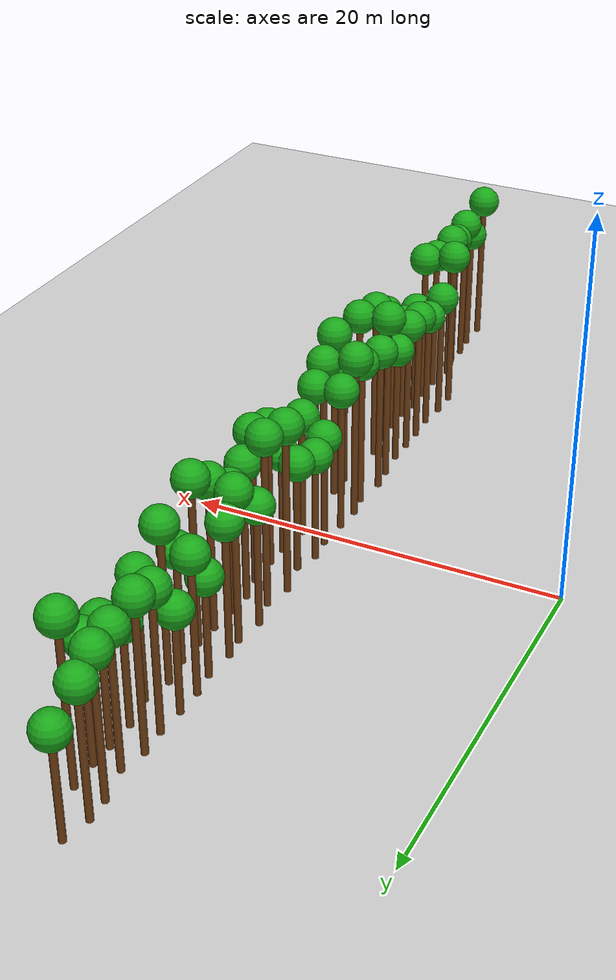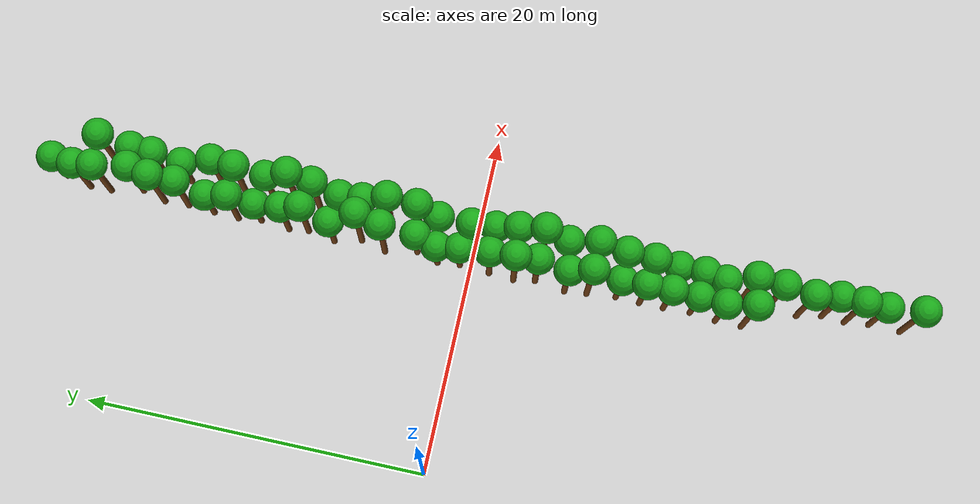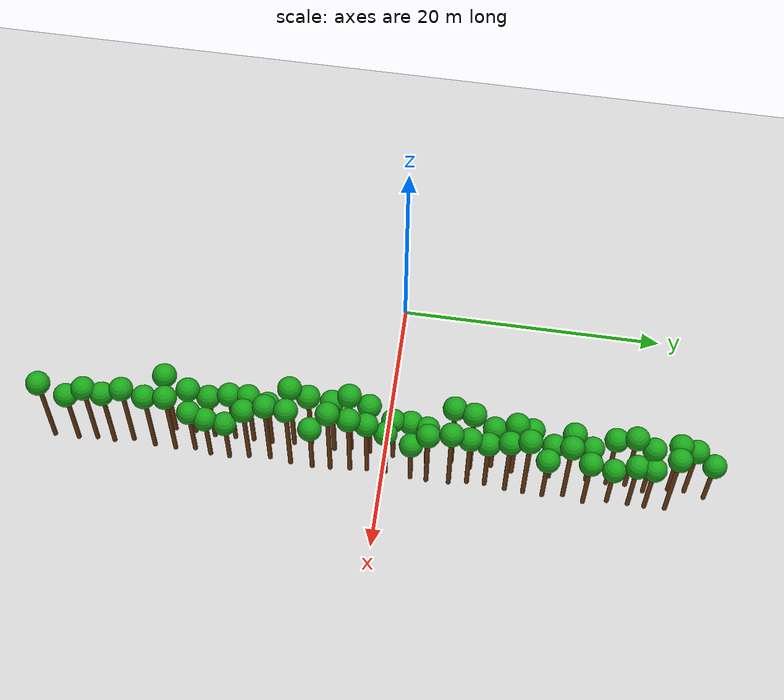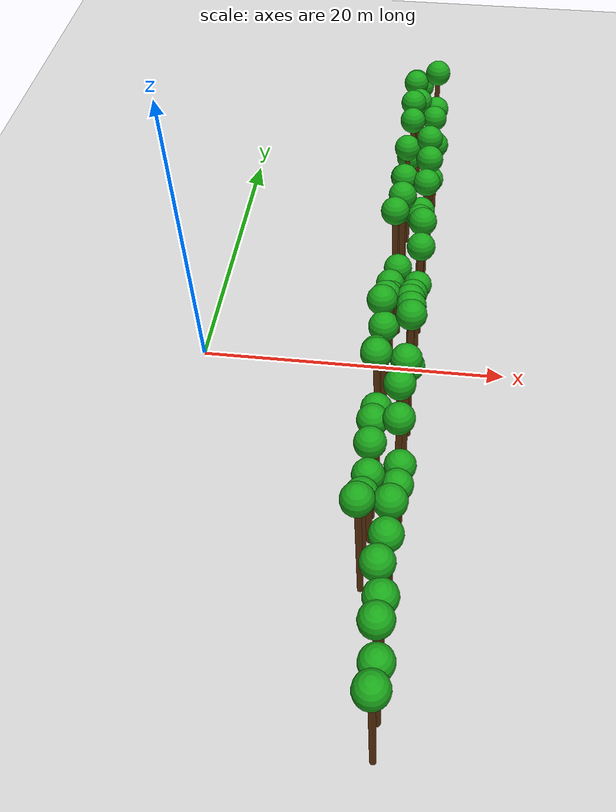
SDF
<sdf version="1.6">
 <world name="forest_world">
  <include><uri>model://sun</uri></include>
  <include><uri>model://ground_plane</uri></include>
  <model name="tree_843">
   <static>true</static>
   <link name="trunk">
    <collision name="collision">
     <pose>12.47 -16.13 4.30 0 0 0</pose>
     <geometry><cylinder><radius>0.18</radius><length>8.60</length></cylinder></geometry>
    </collision>
    <visual name="trunk_visual">
     <pose>12.47 -16.13 4.30 0 0 0</pose>
     <geometry><cylinder><radius>0.18</radius><length>8.60</length></cylinder></geometry>
     <material><ambient>0.35 0.20 0.05 1</ambient><diffuse>0.45 0.25 0.08 1</diffuse></material>
    </visual>
    <visual name="leaf_visual">
     <pose>12.47 -16.13 9.05 0 0 0</pose>
     <geometry><sphere><radius>0.9</radius></sphere></geometry>
     <material><ambient>0.05 0.45 0.05 1</ambient><diffuse>0.10 0.65 0.10 1</diffuse></material>
    </visual>
   </link>
  </model>
  <model name="tree_844">
   <static>true</static>
   <link name="trunk">
    <collision name="collision">
     <pose>12.47 -14.58 3.36 0 0 0</pose>
     <geometry><cylinder><radius>0.18</radius><length>6.72</length></cylinder></geometry>
    </collision>
    <visual name="trunk_visual">
     <pose>12.47 -14.58 3.36 0 0 0</pose>
     <geometry><cylinder><radius>0.18</radius><length>6.72</length></cylinder></geometry>
     <material><ambient>0.35 0.20 0.05 1</ambient><diffuse>0.45 0.25 0.08 1</diffuse></material>
    </visual>
    <visual name="leaf_visual">
     <pose>12.47 -14.58 7.17 0 0 0</pose>
     <geometry><sphere><radius>0.9</radius></sphere></geometry>
     <material><ambient>0.05 0.45 0.05 1</ambient><diffuse>0.10 0.65 0.10 1</diffuse></material>
    </visual>
   </link>
  </model>
  <model name="tree_845">
   <static>true</static>
   <link name="trunk">
    <collision name="collision">
     <pose>12.62 -13.05 3.12 0 0 0</pose>
     <geometry><cylinder><radius>0.18</radius><length>6.23</length></cylinder></geometry>
    </collision>
    <visual name="trunk_visual">
     <pose>12.62 -13.05 3.12 0 0 0</pose>
     <geometry><cylinder><radius>0.18</radius><length>6.23</length></cylinder></geometry>
     <material><ambient>0.35 0.20 0.05 1</ambient><diffuse>0.45 0.25 0.08 1</diffuse></material>
    </visual>
    <visual name="leaf_visual">
     <pose>12.62 -13.05 6.68 0 0 0</pose>
     <geometry><sphere><radius>0.9</radius></sphere></geometry>
     <material><ambient>0.05 0.45 0.05 1</ambient><diffuse>0.10 0.65 0.10 1</diffuse></material>
    </visual>
   </link>
  </model>
  <model name="tree_846">
   <static>true</static>
   <link name="trunk">
    <collision name="collision">
     <pose>12.55 -11.47 3.44 0 0 0</pose>
     <geometry><cylinder><radius>0.18</radius><length>6.89</length></cylinder></geometry>
    </collision>
    <visual name="trunk_visual">
     <pose>12.55 -11.47 3.44 0 0 0</pose>
     <geometry><cylinder><radius>0.18</radius><length>6.89</length></cylinder></geometry>
     <material><ambient>0.35 0.20 0.05 1</ambient><diffuse>0.45 0.25 0.08 1</diffuse></material>
    </visual>
    <visual name="leaf_visual">
     <pose>12.55 -11.47 7.34 0 0 0</pose>
     <geometry><sphere><radius>0.9</radius></sphere></geometry>
     <material><ambient>0.05 0.45 0.05 1</ambient><diffuse>0.10 0.65 0.10 1</diffuse></material>
    </visual>
   </link>
  </model>
  <model name="tree_847">
   <static>true</static>
   <link name="trunk">
    <collision name="collision">
     <pose>12.54 -10.05 3.51 0 0 0</pose>
     <geometry><cylinder><radius>0.18</radius><length>7.02</length></cylinder></geometry>
    </collision>
    <visual name="trunk_visual">
     <pose>12.54 -10.05 3.51 0 0 0</pose>
     <geometry><cylinder><radius>0.18</radius><length>7.02</length></cylinder></geometry>
     <material><ambient>0.35 0.20 0.05 1</ambient><diffuse>0.45 0.25 0.08 1</diffuse></material>
    </visual>
    <visual name="leaf_visual">
     <pose>12.54 -10.05 7.47 0 0 0</pose>
     <geometry><sphere><radius>0.9</radius></sphere></geometry>
     <material><ambient>0.05 0.45 0.05 1</ambient><diffuse>0.10 0.65 0.10 1</diffuse></material>
    </visual>
   </link>
  </model>
  <model name="tree_848">
   <static>true</static>
   <link name="trunk">
    <collision name="collision">
     <pose>12.58 -8.64 3.12 0 0 0</pose>
     <geometry><cylinder><radius>0.18</radius><length>6.23</length></cylinder></geometry>
    </collision>
    <visual name="trunk_visual">
     <pose>12.58 -8.64 3.12 0 0 0</pose>
     <geometry><cylinder><radius>0.18</radius><length>6.23</length></cylinder></geometry>
     <material><ambient>0.35 0.20 0.05 1</ambient><diffuse>0.45 0.25 0.08 1</diffuse></material>
    </visual>
    <visual name="leaf_visual">
     <pose>12.58 -8.64 6.68 0 0 0</pose>
     <geometry><sphere><radius>0.9</radius></sphere></geometry>
     <material><ambient>0.05 0.45 0.05 1</ambient><diffuse>0.10 0.65 0.10 1</diffuse></material>
    </visual>
   </link>
  </model>
  <model name="tree_849">
   <static>true</static>
   <link name="trunk">
    <collision name="collision">
     <pose>12.41 -6.93 4.45 0 0 0</pose>
     <geometry><cylinder><radius>0.18</radius><length>8.91</length></cylinder></geometry>
    </collision>
    <visual name="trunk_visual">
     <pose>12.41 -6.93 4.45 0 0 0</pose>
     <geometry><cylinder><radius>0.18</radius><length>8.91</length></cylinder></geometry>
     <material><ambient>0.35 0.20 0.05 1</ambient><diffuse>0.45 0.25 0.08 1</diffuse></material>
    </visual>
    <visual name="leaf_visual">
     <pose>12.41 -6.93 9.36 0 0 0</pose>
     <geometry><sphere><radius>0.9</radius></sphere></geometry>
     <material><ambient>0.05 0.45 0.05 1</ambient><diffuse>0.10 0.65 0.10 1</diffuse></material>
    </visual>
   </link>
  </model>
  <model name="tree_850">
   <static>true</static>
   <link name="trunk">
    <collision name="collision">
     <pose>12.26 -5.63 3.80 0 0 0</pose>
     <geometry><cylinder><radius>0.18</radius><length>7.61</length></cylinder></geometry>
    </collision>
    <visual name="trunk_visual">
     <pose>12.26 -5.63 3.80 0 0 0</pose>
     <geometry><cylinder><radius>0.18</radius><length>7.61</length></cylinder></geometry>
     <material><ambient>0.35 0.20 0.05 1</ambient><diffuse>0.45 0.25 0.08 1</diffuse></material>
    </visual>
    <visual name="leaf_visual">
     <pose>12.26 -5.63 8.06 0 0 0</pose>
     <geometry><sphere><radius>0.9</radius></sphere></geometry>
     <material><ambient>0.05 0.45 0.05 1</ambient><diffuse>0.10 0.65 0.10 1</diffuse></material>
    </visual>
   </link>
  </model>
  <model name="tree_851">
   <static>true</static>
   <link name="trunk">
    <collision name="collision">
     <pose>12.49 -3.83 3.88 0 0 0</pose>
     <geometry><cylinder><radius>0.18</radius><length>7.75</length></cylinder></geometry>
    </collision>
    <visual name="trunk_visual">
     <pose>12.49 -3.83 3.88 0 0 0</pose>
     <geometry><cylinder><radius>0.18</radius><length>7.75</length></cylinder></geometry>
     <material><ambient>0.35 0.20 0.05 1</ambient><diffuse>0.45 0.25 0.08 1</diffuse></material>
    </visual>
    <visual name="leaf_visual">
     <pose>12.49 -3.83 8.20 0 0 0</pose>
     <geometry><sphere><radius>0.9</radius></sphere></geometry>
     <material><ambient>0.05 0.45 0.05 1</ambient><diffuse>0.10 0.65 0.10 1</diffuse></material>
    </visual>
   </link>
  </model>
  <model name="tree_852">
   <static>true</static>
   <link name="trunk">
    <collision name="collision">
     <pose>12.27 -2.58 4.32 0 0 0</pose>
     <geometry><cylinder><radius>0.18</radius><length>8.64</length></cylinder></geometry>
    </collision>
    <visual name="trunk_visual">
     <pose>12.27 -2.58 4.32 0 0 0</pose>
     <geometry><cylinder><radius>0.18</radius><length>8.64</length></cylinder></geometry>
     <material><ambient>0.35 0.20 0.05 1</ambient><diffuse>0.45 0.25 0.08 1</diffuse></material>
    </visual>
    <visual name="leaf_visual">
     <pose>12.27 -2.58 9.09 0 0 0</pose>
     <geometry><sphere><radius>0.9</radius></sphere></geometry>
     <material><ambient>0.05 0.45 0.05 1</ambient><diffuse>0.10 0.65 0.10 1</diffuse></material>
    </visual>
   </link>
  </model>
  <model name="tree_853">
   <static>true</static>
   <link name="trunk">
    <collision name="collision">
     <pose>12.35 -1.11 3.78 0 0 0</pose>
     <geometry><cylinder><radius>0.18</radius><length>7.55</length></cylinder></geometry>
    </collision>
    <visual name="trunk_visual">
     <pose>12.35 -1.11 3.78 0 0 0</pose>
     <geometry><cylinder><radius>0.18</radius><length>7.55</length></cylinder></geometry>
     <material><ambient>0.35 0.20 0.05 1</ambient><diffuse>0.45 0.25 0.08 1</diffuse></material>
    </visual>
    <visual name="leaf_visual">
     <pose>12.35 -1.11 8.00 0 0 0</pose>
     <geometry><sphere><radius>0.9</radius></sphere></geometry>
     <material><ambient>0.05 0.45 0.05 1</ambient><diffuse>0.10 0.65 0.10 1</diffuse></material>
    </visual>
   </link>
  </model>
  <model name="tree_854">
   <static>true</static>
   <link name="trunk">
    <collision name="collision">
     <pose>12.45 0.66 2.90 0 0 0</pose>
     <geometry><cylinder><radius>0.18</radius><length>5.79</length></cylinder></geometry>
    </collision>
    <visual name="trunk_visual">
     <pose>12.45 0.66 2.90 0 0 0</pose>
     <geometry><cylinder><radius>0.18</radius><length>5.79</length></cylinder></geometry>
     <material><ambient>0.35 0.20 0.05 1</ambient><diffuse>0.45 0.25 0.08 1</diffuse></material>
    </visual>
    <visual name="leaf_visual">
     <pose>12.45 0.66 6.24 0 0 0</pose>
     <geometry><sphere><radius>0.9</radius></sphere></geometry>
     <material><ambient>0.05 0.45 0.05 1</ambient><diffuse>0.10 0.65 0.10 1</diffuse></material>
    </visual>
   </link>
  </model>
  <model name="tree_855">
   <static>true</static>
   <link name="trunk">
    <collision name="collision">
     <pose>12.30 1.97 2.75 0 0 0</pose>
     <geometry><cylinder><radius>0.18</radius><length>5.50</length></cylinder></geometry>
    </collision>
    <visual name="trunk_visual">
     <pose>12.30 1.97 2.75 0 0 0</pose>
     <geometry><cylinder><radius>0.18</radius><length>5.50</length></cylinder></geometry>
     <material><ambient>0.35 0.20 0.05 1</ambient><diffuse>0.45 0.25 0.08 1</diffuse></material>
    </visual>
    <visual name="leaf_visual">
     <pose>12.30 1.97 5.95 0 0 0</pose>
     <geometry><sphere><radius>0.9</radius></sphere></geometry>
     <material><ambient>0.05 0.45 0.05 1</ambient><diffuse>0.10 0.65 0.10 1</diffuse></material>
    </visual>
   </link>
  </model>
  <model name="tree_856">
   <static>true</static>
   <link name="trunk">
    <collision name="collision">
     <pose>12.67 3.25 2.83 0 0 0</pose>
     <geometry><cylinder><radius>0.18</radius><length>5.66</length></cylinder></geometry>
    </collision>
    <visual name="trunk_visual">
     <pose>12.67 3.25 2.83 0 0 0</pose>
     <geometry><cylinder><radius>0.18</radius><length>5.66</length></cylinder></geometry>
     <material><ambient>0.35 0.20 0.05 1</ambient><diffuse>0.45 0.25 0.08 1</diffuse></material>
    </visual>
    <visual name="leaf_visual">
     <pose>12.67 3.25 6.11 0 0 0</pose>
     <geometry><sphere><radius>0.9</radius></sphere></geometry>
     <material><ambient>0.05 0.45 0.05 1</ambient><diffuse>0.10 0.65 0.10 1</diffuse></material>
    </visual>
   </link>
  </model>
  <model name="tree_857">
   <static>true</static>
   <link name="trunk">
    <collision name="collision">
     <pose>12.29 5.11 4.39 0 0 0</pose>
     <geometry><cylinder><radius>0.18</radius><length>8.79</length></cylinder></geometry>
    </collision>
    <visual name="trunk_visual">
     <pose>12.29 5.11 4.39 0 0 0</pose>
     <geometry><cylinder><radius>0.18</radius><length>8.79</length></cylinder></geometry>
     <material><ambient>0.35 0.20 0.05 1</ambient><diffuse>0.45 0.25 0.08 1</diffuse></material>
    </visual>
    <visual name="leaf_visual">
     <pose>12.29 5.11 9.24 0 0 0</pose>
     <geometry><sphere><radius>0.9</radius></sphere></geometry>
     <material><ambient>0.05 0.45 0.05 1</ambient><diffuse>0.10 0.65 0.10 1</diffuse></material>
    </visual>
   </link>
  </model>
  <model name="tree_858">
   <static>true</static>
   <link name="trunk">
    <collision name="collision">
     <pose>12.63 6.57 4.44 0 0 0</pose>
     <geometry><cylinder><radius>0.18</radius><length>8.88</length></cylinder></geometry>
    </collision>
    <visual name="trunk_visual">
     <pose>12.63 6.57 4.44 0 0 0</pose>
     <geometry><cylinder><radius>0.18</radius><length>8.88</length></cylinder></geometry>
     <material><ambient>0.35 0.20 0.05 1</ambient><diffuse>0.45 0.25 0.08 1</diffuse></material>
    </visual>
    <visual name="leaf_visual">
     <pose>12.63 6.57 9.33 0 0 0</pose>
     <geometry><sphere><radius>0.9</radius></sphere></geometry>
     <material><ambient>0.05 0.45 0.05 1</ambient><diffuse>0.10 0.65 0.10 1</diffuse></material>
    </visual>
   </link>
  </model>
  <model name="tree_859">
   <static>true</static>
   <link name="trunk">
    <collision name="collision">
     <pose>12.25 8.14 3.11 0 0 0</pose>
     <geometry><cylinder><radius>0.18</radius><length>6.21</length></cylinder></geometry>
    </collision>
    <visual name="trunk_visual">
     <pose>12.25 8.14 3.11 0 0 0</pose>
     <geometry><cylinder><radius>0.18</radius><length>6.21</length></cylinder></geometry>
     <material><ambient>0.35 0.20 0.05 1</ambient><diffuse>0.45 0.25 0.08 1</diffuse></material>
    </visual>
    <visual name="leaf_visual">
     <pose>12.25 8.14 6.66 0 0 0</pose>
     <geometry><sphere><radius>0.9</radius></sphere></geometry>
     <material><ambient>0.05 0.45 0.05 1</ambient><diffuse>0.10 0.65 0.10 1</diffuse></material>
    </visual>
   </link>
  </model>
  <model name="tree_860">
   <static>true</static>
   <link name="trunk">
    <collision name="collision">
     <pose>12.50 9.74 3.91 0 0 0</pose>
     <geometry><cylinder><radius>0.18</radius><length>7.82</length></cylinder></geometry>
    </collision>
    <visual name="trunk_visual">
     <pose>12.50 9.74 3.91 0 0 0</pose>
     <geometry><cylinder><radius>0.18</radius><length>7.82</length></cylinder></geometry>
     <material><ambient>0.35 0.20 0.05 1</ambient><diffuse>0.45 0.25 0.08 1</diffuse></material>
    </visual>
    <visual name="leaf_visual">
     <pose>12.50 9.74 8.27 0 0 0</pose>
     <geometry><sphere><radius>0.9</radius></sphere></geometry>
     <material><ambient>0.05 0.45 0.05 1</ambient><diffuse>0.10 0.65 0.10 1</diffuse></material>
    </visual>
   </link>
  </model>
  <model name="tree_861">
   <static>true</static>
   <link name="trunk">
    <collision name="collision">
     <pose>12.36 10.89 3.46 0 0 0</pose>
     <geometry><cylinder><radius>0.18</radius><length>6.93</length></cylinder></geometry>
    </collision>
    <visual name="trunk_visual">
     <pose>12.36 10.89 3.46 0 0 0</pose>
     <geometry><cylinder><radius>0.18</radius><length>6.93</length></cylinder></geometry>
     <material><ambient>0.35 0.20 0.05 1</ambient><diffuse>0.45 0.25 0.08 1</diffuse></material>
    </visual>
    <visual name="leaf_visual">
     <pose>12.36 10.89 7.38 0 0 0</pose>
     <geometry><sphere><radius>0.9</radius></sphere></geometry>
     <material><ambient>0.05 0.45 0.05 1</ambient><diffuse>0.10 0.65 0.10 1</diffuse></material>
    </visual>
   </link>
  </model>
  <model name="tree_862">
   <static>true</static>
   <link name="trunk">
    <collision name="collision">
     <pose>12.50 12.59 2.52 0 0 0</pose>
     <geometry><cylinder><radius>0.18</radius><length>5.05</length></cylinder></geometry>
    </collision>
    <visual name="trunk_visual">
     <pose>12.50 12.59 2.52 0 0 0</pose>
     <geometry><cylinder><radius>0.18</radius><length>5.05</length></cylinder></geometry>
     <material><ambient>0.35 0.20 0.05 1</ambient><diffuse>0.45 0.25 0.08 1</diffuse></material>
    </visual>
    <visual name="leaf_visual">
     <pose>12.50 12.59 5.50 0 0 0</pose>
     <geometry><sphere><radius>0.9</radius></sphere></geometry>
     <material><ambient>0.05 0.45 0.05 1</ambient><diffuse>0.10 0.65 0.10 1</diffuse></material>
    </visual>
   </link>
  </model>
  <model name="tree_863">
   <static>true</static>
   <link name="trunk">
    <collision name="collision">
     <pose>12.34 13.94 3.55 0 0 0</pose>
     <geometry><cylinder><radius>0.18</radius><length>7.09</length></cylinder></geometry>
    </collision>
    <visual name="trunk_visual">
     <pose>12.34 13.94 3.55 0 0 0</pose>
     <geometry><cylinder><radius>0.18</radius><length>7.09</length></cylinder></geometry>
     <material><ambient>0.35 0.20 0.05 1</ambient><diffuse>0.45 0.25 0.08 1</diffuse></material>
    </visual>
    <visual name="leaf_visual">
     <pose>12.34 13.94 7.54 0 0 0</pose>
     <geometry><sphere><radius>0.9</radius></sphere></geometry>
     <material><ambient>0.05 0.45 0.05 1</ambient><diffuse>0.10 0.65 0.10 1</diffuse></material>
    </visual>
   </link>
  </model>
  <model name="tree_864">
   <static>true</static>
   <link name="trunk">
    <collision name="collision">
     <pose>12.37 15.40 2.59 0 0 0</pose>
     <geometry><cylinder><radius>0.18</radius><length>5.17</length></cylinder></geometry>
    </collision>
    <visual name="trunk_visual">
     <pose>12.37 15.40 2.59 0 0 0</pose>
     <geometry><cylinder><radius>0.18</radius><length>5.17</length></cylinder></geometry>
     <material><ambient>0.35 0.20 0.05 1</ambient><diffuse>0.45 0.25 0.08 1</diffuse></material>
    </visual>
    <visual name="leaf_visual">
     <pose>12.37 15.40 5.62 0 0 0</pose>
     <geometry><sphere><radius>0.9</radius></sphere></geometry>
     <material><ambient>0.05 0.45 0.05 1</ambient><diffuse>0.10 0.65 0.10 1</diffuse></material>
    </visual>
   </link>
  </model>
  <model name="tree_865">
   <static>true</static>
   <link name="trunk">
    <collision name="collision">
     <pose>12.46 16.95 3.65 0 0 0</pose>
     <geometry><cylinder><radius>0.18</radius><length>7.29</length></cylinder></geometry>
    </collision>
    <visual name="trunk_visual">
     <pose>12.46 16.95 3.65 0 0 0</pose>
     <geometry><cylinder><radius>0.18</radius><length>7.29</length></cylinder></geometry>
     <material><ambient>0.35 0.20 0.05 1</ambient><diffuse>0.45 0.25 0.08 1</diffuse></material>
    </visual>
    <visual name="leaf_visual">
     <pose>12.46 16.95 7.74 0 0 0</pose>
     <geometry><sphere><radius>0.9</radius></sphere></geometry>
     <material><ambient>0.05 0.45 0.05 1</ambient><diffuse>0.10 0.65 0.10 1</diffuse></material>
    </visual>
   </link>
  </model>
  <model name="tree_866">
   <static>true</static>
   <link name="trunk">
    <collision name="collision">
     <pose>12.39 18.38 3.91 0 0 0</pose>
     <geometry><cylinder><radius>0.18</radius><length>7.82</length></cylinder></geometry>
    </collision>
    <visual name="trunk_visual">
     <pose>12.39 18.38 3.91 0 0 0</pose>
     <geometry><cylinder><radius>0.18</radius><length>7.82</length></cylinder></geometry>
     <material><ambient>0.35 0.20 0.05 1</ambient><diffuse>0.45 0.25 0.08 1</diffuse></material>
    </visual>
    <visual name="leaf_visual">
     <pose>12.39 18.38 8.27 0 0 0</pose>
     <geometry><sphere><radius>0.9</radius></sphere></geometry>
     <material><ambient>0.05 0.45 0.05 1</ambient><diffuse>0.10 0.65 0.10 1</diffuse></material>
    </visual>
   </link>
  </model>
  <model name="tree_867">
   <static>true</static>
   <link name="trunk">
    <collision name="collision">
     <pose>12.74 19.75 3.53 0 0 0</pose>
     <geometry><cylinder><radius>0.18</radius><length>7.07</length></cylinder></geometry>
    </collision>
    <visual name="trunk_visual">
     <pose>12.74 19.75 3.53 0 0 0</pose>
     <geometry><cylinder><radius>0.18</radius><length>7.07</length></cylinder></geometry>
     <material><ambient>0.35 0.20 0.05 1</ambient><diffuse>0.45 0.25 0.08 1</diffuse></material>
    </visual>
    <visual name="leaf_visual">
     <pose>12.74 19.75 7.52 0 0 0</pose>
     <geometry><sphere><radius>0.9</radius></sphere></geometry>
     <material><ambient>0.05 0.45 0.05 1</ambient><diffuse>0.10 0.65 0.10 1</diffuse></material>
    </visual>
   </link>
  </model>
  <model name="tree_868">
   <static>true</static>
   <link name="trunk">
    <collision name="collision">
     <pose>12.34 21.62 3.69 0 0 0</pose>
     <geometry><cylinder><radius>0.18</radius><length>7.39</length></cylinder></geometry>
    </collision>
    <visual name="trunk_visual">
     <pose>12.34 21.62 3.69 0 0 0</pose>
     <geometry><cylinder><radius>0.18</radius><length>7.39</length></cylinder></geometry>
     <material><ambient>0.35 0.20 0.05 1</ambient><diffuse>0.45 0.25 0.08 1</diffuse></material>
    </visual>
    <visual name="leaf_visual">
     <pose>12.34 21.62 7.84 0 0 0</pose>
     <geometry><sphere><radius>0.9</radius></sphere></geometry>
     <material><ambient>0.05 0.45 0.05 1</ambient><diffuse>0.10 0.65 0.10 1</diffuse></material>
    </visual>
   </link>
  </model>
  <model name="tree_869">
   <static>true</static>
   <link name="trunk">
    <collision name="collision">
     <pose>12.30 22.85 3.35 0 0 0</pose>
     <geometry><cylinder><radius>0.18</radius><length>6.70</length></cylinder></geometry>
    </collision>
    <visual name="trunk_visual">
     <pose>12.30 22.85 3.35 0 0 0</pose>
     <geometry><cylinder><radius>0.18</radius><length>6.70</length></cylinder></geometry>
     <material><ambient>0.35 0.20 0.05 1</ambient><diffuse>0.45 0.25 0.08 1</diffuse></material>
    </visual>
    <visual name="leaf_visual">
     <pose>12.30 22.85 7.15 0 0 0</pose>
     <geometry><sphere><radius>0.9</radius></sphere></geometry>
     <material><ambient>0.05 0.45 0.05 1</ambient><diffuse>0.10 0.65 0.10 1</diffuse></material>
    </visual>
   </link>
  </model>
  <model name="tree_870">
   <static>true</static>
   <link name="trunk">
    <collision name="collision">
     <pose>12.64 24.33 2.67 0 0 0</pose>
     <geometry><cylinder><radius>0.18</radius><length>5.33</length></cylinder></geometry>
    </collision>
    <visual name="trunk_visual">
     <pose>12.64 24.33 2.67 0 0 0</pose>
     <geometry><cylinder><radius>0.18</radius><length>5.33</length></cylinder></geometry>
     <material><ambient>0.35 0.20 0.05 1</ambient><diffuse>0.45 0.25 0.08 1</diffuse></material>
    </visual>
    <visual name="leaf_visual">
     <pose>12.64 24.33 5.78 0 0 0</pose>
     <geometry><sphere><radius>0.9</radius></sphere></geometry>
     <material><ambient>0.05 0.45 0.05 1</ambient><diffuse>0.10 0.65 0.10 1</diffuse></material>
    </visual>
   </link>
  </model>
  <model name="tree_871">
   <static>true</static>
   <link name="trunk">
    <collision name="collision">
     <pose>14.18 -25.22 4.11 0 0 0</pose>
     <geometry><cylinder><radius>0.18</radius><length>8.23</length></cylinder></geometry>
    </collision>
    <visual name="trunk_visual">
     <pose>14.18 -25.22 4.11 0 0 0</pose>
     <geometry><cylinder><radius>0.18</radius><length>8.23</length></cylinder></geometry>
     <material><ambient>0.35 0.20 0.05 1</ambient><diffuse>0.45 0.25 0.08 1</diffuse></material>
    </visual>
    <visual name="leaf_visual">
     <pose>14.18 -25.22 8.68 0 0 0</pose>
     <geometry><sphere><radius>0.9</radius></sphere></geometry>
     <material><ambient>0.05 0.45 0.05 1</ambient><diffuse>0.10 0.65 0.10 1</diffuse></material>
    </visual>
   </link>
  </model>
  <model name="tree_872">
   <static>true</static>
   <link name="trunk">
    <collision name="collision">
     <pose>14.19 -23.37 3.39 0 0 0</pose>
     <geometry><cylinder><radius>0.18</radius><length>6.79</length></cylinder></geometry>
    </collision>
    <visual name="trunk_visual">
     <pose>14.19 -23.37 3.39 0 0 0</pose>
     <geometry><cylinder><radius>0.18</radius><length>6.79</length></cylinder></geometry>
     <material><ambient>0.35 0.20 0.05 1</ambient><diffuse>0.45 0.25 0.08 1</diffuse></material>
    </visual>
    <visual name="leaf_visual">
     <pose>14.19 -23.37 7.24 0 0 0</pose>
     <geometry><sphere><radius>0.9</radius></sphere></geometry>
     <material><ambient>0.05 0.45 0.05 1</ambient><diffuse>0.10 0.65 0.10 1</diffuse></material>
    </visual>
   </link>
  </model>
  <model name="tree_873">
   <static>true</static>
   <link name="trunk">
    <collision name="collision">
     <pose>14.03 -21.94 4.00 0 0 0</pose>
     <geometry><cylinder><radius>0.18</radius><length>8.00</length></cylinder></geometry>
    </collision>
    <visual name="trunk_visual">
     <pose>14.03 -21.94 4.00 0 0 0</pose>
     <geometry><cylinder><radius>0.18</radius><length>8.00</length></cylinder></geometry>
     <material><ambient>0.35 0.20 0.05 1</ambient><diffuse>0.45 0.25 0.08 1</diffuse></material>
    </visual>
    <visual name="leaf_visual">
     <pose>14.03 -21.94 8.45 0 0 0</pose>
     <geometry><sphere><radius>0.9</radius></sphere></geometry>
     <material><ambient>0.05 0.45 0.05 1</ambient><diffuse>0.10 0.65 0.10 1</diffuse></material>
    </visual>
   </link>
  </model>
  <model name="tree_874">
   <static>true</static>
   <link name="trunk">
    <collision name="collision">
     <pose>14.09 -20.59 3.81 0 0 0</pose>
     <geometry><cylinder><radius>0.18</radius><length>7.61</length></cylinder></geometry>
    </collision>
    <visual name="trunk_visual">
     <pose>14.09 -20.59 3.81 0 0 0</pose>
     <geometry><cylinder><radius>0.18</radius><length>7.61</length></cylinder></geometry>
     <material><ambient>0.35 0.20 0.05 1</ambient><diffuse>0.45 0.25 0.08 1</diffuse></material>
    </visual>
    <visual name="leaf_visual">
     <pose>14.09 -20.59 8.06 0 0 0</pose>
     <geometry><sphere><radius>0.9</radius></sphere></geometry>
     <material><ambient>0.05 0.45 0.05 1</ambient><diffuse>0.10 0.65 0.10 1</diffuse></material>
    </visual>
   </link>
  </model>
  <model name="tree_875">
   <static>true</static>
   <link name="trunk">
    <collision name="collision">
     <pose>13.78 -19.15 4.07 0 0 0</pose>
     <geometry><cylinder><radius>0.18</radius><length>8.15</length></cylinder></geometry>
    </collision>
    <visual name="trunk_visual">
     <pose>13.78 -19.15 4.07 0 0 0</pose>
     <geometry><cylinder><radius>0.18</radius><length>8.15</length></cylinder></geometry>
     <material><ambient>0.35 0.20 0.05 1</ambient><diffuse>0.45 0.25 0.08 1</diffuse></material>
    </visual>
    <visual name="leaf_visual">
     <pose>13.78 -19.15 8.60 0 0 0</pose>
     <geometry><sphere><radius>0.9</radius></sphere></geometry>
     <material><ambient>0.05 0.45 0.05 1</ambient><diffuse>0.10 0.65 0.10 1</diffuse></material>
    </visual>
   </link>
  </model>
  <model name="tree_876">
   <static>true</static>
   <link name="trunk">
    <collision name="collision">
     <pose>14.02 -17.46 3.92 0 0 0</pose>
     <geometry><cylinder><radius>0.18</radius><length>7.84</length></cylinder></geometry>
    </collision>
    <visual name="trunk_visual">
     <pose>14.02 -17.46 3.92 0 0 0</pose>
     <geometry><cylinder><radius>0.18</radius><length>7.84</length></cylinder></geometry>
     <material><ambient>0.35 0.20 0.05 1</ambient><diffuse>0.45 0.25 0.08 1</diffuse></material>
    </visual>
    <visual name="leaf_visual">
     <pose>14.02 -17.46 8.29 0 0 0</pose>
     <geometry><sphere><radius>0.9</radius></sphere></geometry>
     <material><ambient>0.05 0.45 0.05 1</ambient><diffuse>0.10 0.65 0.10 1</diffuse></material>
    </visual>
   </link>
  </model>
  <model name="tree_877">
   <static>true</static>
   <link name="trunk">
    <collision name="collision">
     <pose>14.06 -15.86 4.13 0 0 0</pose>
     <geometry><cylinder><radius>0.18</radius><length>8.27</length></cylinder></geometry>
    </collision>
    <visual name="trunk_visual">
     <pose>14.06 -15.86 4.13 0 0 0</pose>
     <geometry><cylinder><radius>0.18</radius><length>8.27</length></cylinder></geometry>
     <material><ambient>0.35 0.20 0.05 1</ambient><diffuse>0.45 0.25 0.08 1</diffuse></material>
    </visual>
    <visual name="leaf_visual">
     <pose>14.06 -15.86 8.72 0 0 0</pose>
     <geometry><sphere><radius>0.9</radius></sphere></geometry>
     <material><ambient>0.05 0.45 0.05 1</ambient><diffuse>0.10 0.65 0.10 1</diffuse></material>
    </visual>
   </link>
  </model>
  <model name="tree_878">
   <static>true</static>
   <link name="trunk">
    <collision name="collision">
     <pose>13.91 -14.36 2.92 0 0 0</pose>
     <geometry><cylinder><radius>0.18</radius><length>5.84</length></cylinder></geometry>
    </collision>
    <visual name="trunk_visual">
     <pose>13.91 -14.36 2.92 0 0 0</pose>
     <geometry><cylinder><radius>0.18</radius><length>5.84</length></cylinder></geometry>
     <material><ambient>0.35 0.20 0.05 1</ambient><diffuse>0.45 0.25 0.08 1</diffuse></material>
    </visual>
    <visual name="leaf_visual">
     <pose>13.91 -14.36 6.29 0 0 0</pose>
     <geometry><sphere><radius>0.9</radius></sphere></geometry>
     <material><ambient>0.05 0.45 0.05 1</ambient><diffuse>0.10 0.65 0.10 1</diffuse></material>
    </visual>
   </link>
  </model>
  <model name="tree_879">
   <static>true</static>
   <link name="trunk">
    <collision name="collision">
     <pose>14.16 -13.13 2.81 0 0 0</pose>
     <geometry><cylinder><radius>0.18</radius><length>5.61</length></cylinder></geometry>
    </collision>
    <visual name="trunk_visual">
     <pose>14.16 -13.13 2.81 0 0 0</pose>
     <geometry><cylinder><radius>0.18</radius><length>5.61</length></cylinder></geometry>
     <material><ambient>0.35 0.20 0.05 1</ambient><diffuse>0.45 0.25 0.08 1</diffuse></material>
    </visual>
    <visual name="leaf_visual">
     <pose>14.16 -13.13 6.06 0 0 0</pose>
     <geometry><sphere><radius>0.9</radius></sphere></geometry>
     <material><ambient>0.05 0.45 0.05 1</ambient><diffuse>0.10 0.65 0.10 1</diffuse></material>
    </visual>
   </link>
  </model>
  <model name="tree_880">
   <static>true</static>
   <link name="trunk">
    <collision name="collision">
     <pose>14.19 -11.66 2.65 0 0 0</pose>
     <geometry><cylinder><radius>0.18</radius><length>5.30</length></cylinder></geometry>
    </collision>
    <visual name="trunk_visual">
     <pose>14.19 -11.66 2.65 0 0 0</pose>
     <geometry><cylinder><radius>0.18</radius><length>5.30</length></cylinder></geometry>
     <material><ambient>0.35 0.20 0.05 1</ambient><diffuse>0.45 0.25 0.08 1</diffuse></material>
    </visual>
    <visual name="leaf_visual">
     <pose>14.19 -11.66 5.75 0 0 0</pose>
     <geometry><sphere><radius>0.9</radius></sphere></geometry>
     <material><ambient>0.05 0.45 0.05 1</ambient><diffuse>0.10 0.65 0.10 1</diffuse></material>
    </visual>
   </link>
  </model>
  <model name="tree_881">
   <static>true</static>
   <link name="trunk">
    <collision name="collision">
     <pose>13.97 -10.18 3.74 0 0 0</pose>
     <geometry><cylinder><radius>0.18</radius><length>7.49</length></cylinder></geometry>
    </collision>
    <visual name="trunk_visual">
     <pose>13.97 -10.18 3.74 0 0 0</pose>
     <geometry><cylinder><radius>0.18</radius><length>7.49</length></cylinder></geometry>
     <material><ambient>0.35 0.20 0.05 1</ambient><diffuse>0.45 0.25 0.08 1</diffuse></material>
    </visual>
    <visual name="leaf_visual">
     <pose>13.97 -10.18 7.94 0 0 0</pose>
     <geometry><sphere><radius>0.9</radius></sphere></geometry>
     <material><ambient>0.05 0.45 0.05 1</ambient><diffuse>0.10 0.65 0.10 1</diffuse></material>
    </visual>
   </link>
  </model>
  <model name="tree_882">
   <static>true</static>
   <link name="trunk">
    <collision name="collision">
     <pose>13.85 -8.57 4.22 0 0 0</pose>
     <geometry><cylinder><radius>0.18</radius><length>8.43</length></cylinder></geometry>
    </collision>
    <visual name="trunk_visual">
     <pose>13.85 -8.57 4.22 0 0 0</pose>
     <geometry><cylinder><radius>0.18</radius><length>8.43</length></cylinder></geometry>
     <material><ambient>0.35 0.20 0.05 1</ambient><diffuse>0.45 0.25 0.08 1</diffuse></material>
    </visual>
    <visual name="leaf_visual">
     <pose>13.85 -8.57 8.88 0 0 0</pose>
     <geometry><sphere><radius>0.9</radius></sphere></geometry>
     <material><ambient>0.05 0.45 0.05 1</ambient><diffuse>0.10 0.65 0.10 1</diffuse></material>
    </visual>
   </link>
  </model>
  <model name="tree_883">
   <static>true</static>
   <link name="trunk">
    <collision name="collision">
     <pose>14.06 -6.97 4.32 0 0 0</pose>
     <geometry><cylinder><radius>0.18</radius><length>8.63</length></cylinder></geometry>
    </collision>
    <visual name="trunk_visual">
     <pose>14.06 -6.97 4.32 0 0 0</pose>
     <geometry><cylinder><radius>0.18</radius><length>8.63</length></cylinder></geometry>
     <material><ambient>0.35 0.20 0.05 1</ambient><diffuse>0.45 0.25 0.08 1</diffuse></material>
    </visual>
    <visual name="leaf_visual">
     <pose>14.06 -6.97 9.08 0 0 0</pose>
     <geometry><sphere><radius>0.9</radius></sphere></geometry>
     <material><ambient>0.05 0.45 0.05 1</ambient><diffuse>0.10 0.65 0.10 1</diffuse></material>
    </visual>
   </link>
  </model>
  <model name="tree_884">
   <static>true</static>
   <link name="trunk">
    <collision name="collision">
     <pose>14.14 -5.29 3.07 0 0 0</pose>
     <geometry><cylinder><radius>0.18</radius><length>6.14</length></cylinder></geometry>
    </collision>
    <visual name="trunk_visual">
     <pose>14.14 -5.29 3.07 0 0 0</pose>
     <geometry><cylinder><radius>0.18</radius><length>6.14</length></cylinder></geometry>
     <material><ambient>0.35 0.20 0.05 1</ambient><diffuse>0.45 0.25 0.08 1</diffuse></material>
    </visual>
    <visual name="leaf_visual">
     <pose>14.14 -5.29 6.59 0 0 0</pose>
     <geometry><sphere><radius>0.9</radius></sphere></geometry>
     <material><ambient>0.05 0.45 0.05 1</ambient><diffuse>0.10 0.65 0.10 1</diffuse></material>
    </visual>
   </link>
  </model>
  <model name="tree_885">
   <static>true</static>
   <link name="trunk">
    <collision name="collision">
     <pose>14.07 -3.92 4.49 0 0 0</pose>
     <geometry><cylinder><radius>0.18</radius><length>8.98</length></cylinder></geometry>
    </collision>
    <visual name="trunk_visual">
     <pose>14.07 -3.92 4.49 0 0 0</pose>
     <geometry><cylinder><radius>0.18</radius><length>8.98</length></cylinder></geometry>
     <material><ambient>0.35 0.20 0.05 1</ambient><diffuse>0.45 0.25 0.08 1</diffuse></material>
    </visual>
    <visual name="leaf_visual">
     <pose>14.07 -3.92 9.43 0 0 0</pose>
     <geometry><sphere><radius>0.9</radius></sphere></geometry>
     <material><ambient>0.05 0.45 0.05 1</ambient><diffuse>0.10 0.65 0.10 1</diffuse></material>
    </visual>
   </link>
  </model>
  <model name="tree_886">
   <static>true</static>
   <link name="trunk">
    <collision name="collision">
     <pose>13.95 -2.43 4.07 0 0 0</pose>
     <geometry><cylinder><radius>0.18</radius><length>8.13</length></cylinder></geometry>
    </collision>
    <visual name="trunk_visual">
     <pose>13.95 -2.43 4.07 0 0 0</pose>
     <geometry><cylinder><radius>0.18</radius><length>8.13</length></cylinder></geometry>
     <material><ambient>0.35 0.20 0.05 1</ambient><diffuse>0.45 0.25 0.08 1</diffuse></material>
    </visual>
    <visual name="leaf_visual">
     <pose>13.95 -2.43 8.58 0 0 0</pose>
     <geometry><sphere><radius>0.9</radius></sphere></geometry>
     <material><ambient>0.05 0.45 0.05 1</ambient><diffuse>0.10 0.65 0.10 1</diffuse></material>
    </visual>
   </link>
  </model>
  <model name="tree_887">
   <static>true</static>
   <link name="trunk">
    <collision name="collision">
     <pose>13.81 -1.14 3.71 0 0 0</pose>
     <geometry><cylinder><radius>0.18</radius><length>7.42</length></cylinder></geometry>
    </collision>
    <visual name="trunk_visual">
     <pose>13.81 -1.14 3.71 0 0 0</pose>
     <geometry><cylinder><radius>0.18</radius><length>7.42</length></cylinder></geometry>
     <material><ambient>0.35 0.20 0.05 1</ambient><diffuse>0.45 0.25 0.08 1</diffuse></material>
    </visual>
    <visual name="leaf_visual">
     <pose>13.81 -1.14 7.87 0 0 0</pose>
     <geometry><sphere><radius>0.9</radius></sphere></geometry>
     <material><ambient>0.05 0.45 0.05 1</ambient><diffuse>0.10 0.65 0.10 1</diffuse></material>
    </visual>
   </link>
  </model>
  <model name="tree_888">
   <static>true</static>
   <link name="trunk">
    <collision name="collision">
     <pose>13.86 0.27 3.21 0 0 0</pose>
     <geometry><cylinder><radius>0.18</radius><length>6.43</length></cylinder></geometry>
    </collision>
    <visual name="trunk_visual">
     <pose>13.86 0.27 3.21 0 0 0</pose>
     <geometry><cylinder><radius>0.18</radius><length>6.43</length></cylinder></geometry>
     <material><ambient>0.35 0.20 0.05 1</ambient><diffuse>0.45 0.25 0.08 1</diffuse></material>
    </visual>
    <visual name="leaf_visual">
     <pose>13.86 0.27 6.88 0 0 0</pose>
     <geometry><sphere><radius>0.9</radius></sphere></geometry>
     <material><ambient>0.05 0.45 0.05 1</ambient><diffuse>0.10 0.65 0.10 1</diffuse></material>
    </visual>
   </link>
  </model>
  <model name="tree_889">
   <static>true</static>
   <link name="trunk">
    <collision name="collision">
     <pose>14.02 2.19 2.66 0 0 0</pose>
     <geometry><cylinder><radius>0.18</radius><length>5.31</length></cylinder></geometry>
    </collision>
    <visual name="trunk_visual">
     <pose>14.02 2.19 2.66 0 0 0</pose>
     <geometry><cylinder><radius>0.18</radius><length>5.31</length></cylinder></geometry>
     <material><ambient>0.35 0.20 0.05 1</ambient><diffuse>0.45 0.25 0.08 1</diffuse></material>
    </visual>
    <visual name="leaf_visual">
     <pose>14.02 2.19 5.76 0 0 0</pose>
     <geometry><sphere><radius>0.9</radius></sphere></geometry>
     <material><ambient>0.05 0.45 0.05 1</ambient><diffuse>0.10 0.65 0.10 1</diffuse></material>
    </visual>
   </link>
  </model>
  <model name="tree_890">
   <static>true</static>
   <link name="trunk">
    <collision name="collision">
     <pose>14.09 3.42 3.74 0 0 0</pose>
     <geometry><cylinder><radius>0.18</radius><length>7.47</length></cylinder></geometry>
    </collision>
    <visual name="trunk_visual">
     <pose>14.09 3.42 3.74 0 0 0</pose>
     <geometry><cylinder><radius>0.18</radius><length>7.47</length></cylinder></geometry>
     <material><ambient>0.35 0.20 0.05 1</ambient><diffuse>0.45 0.25 0.08 1</diffuse></material>
    </visual>
    <visual name="leaf_visual">
     <pose>14.09 3.42 7.92 0 0 0</pose>
     <geometry><sphere><radius>0.9</radius></sphere></geometry>
     <material><ambient>0.05 0.45 0.05 1</ambient><diffuse>0.10 0.65 0.10 1</diffuse></material>
    </visual>
   </link>
  </model>
  <model name="tree_891">
   <static>true</static>
   <link name="trunk">
    <collision name="collision">
     <pose>14.05 5.12 4.04 0 0 0</pose>
     <geometry><cylinder><radius>0.18</radius><length>8.07</length></cylinder></geometry>
    </collision>
    <visual name="trunk_visual">
     <pose>14.05 5.12 4.04 0 0 0</pose>
     <geometry><cylinder><radius>0.18</radius><length>8.07</length></cylinder></geometry>
     <material><ambient>0.35 0.20 0.05 1</ambient><diffuse>0.45 0.25 0.08 1</diffuse></material>
    </visual>
    <visual name="leaf_visual">
     <pose>14.05 5.12 8.52 0 0 0</pose>
     <geometry><sphere><radius>0.9</radius></sphere></geometry>
     <material><ambient>0.05 0.45 0.05 1</ambient><diffuse>0.10 0.65 0.10 1</diffuse></material>
    </visual>
   </link>
  </model>
  <model name="tree_892">
   <static>true</static>
   <link name="trunk">
    <collision name="collision">
     <pose>13.81 6.48 3.57 0 0 0</pose>
     <geometry><cylinder><radius>0.18</radius><length>7.15</length></cylinder></geometry>
    </collision>
    <visual name="trunk_visual">
     <pose>13.81 6.48 3.57 0 0 0</pose>
     <geometry><cylinder><radius>0.18</radius><length>7.15</length></cylinder></geometry>
     <material><ambient>0.35 0.20 0.05 1</ambient><diffuse>0.45 0.25 0.08 1</diffuse></material>
    </visual>
    <visual name="leaf_visual">
     <pose>13.81 6.48 7.60 0 0 0</pose>
     <geometry><sphere><radius>0.9</radius></sphere></geometry>
     <material><ambient>0.05 0.45 0.05 1</ambient><diffuse>0.10 0.65 0.10 1</diffuse></material>
    </visual>
   </link>
  </model>
  <model name="tree_893">
   <static>true</static>
   <link name="trunk">
    <collision name="collision">
     <pose>13.78 7.83 3.32 0 0 0</pose>
     <geometry><cylinder><radius>0.18</radius><length>6.65</length></cylinder></geometry>
    </collision>
    <visual name="trunk_visual">
     <pose>13.78 7.83 3.32 0 0 0</pose>
     <geometry><cylinder><radius>0.18</radius><length>6.65</length></cylinder></geometry>
     <material><ambient>0.35 0.20 0.05 1</ambient><diffuse>0.45 0.25 0.08 1</diffuse></material>
    </visual>
    <visual name="leaf_visual">
     <pose>13.78 7.83 7.10 0 0 0</pose>
     <geometry><sphere><radius>0.9</radius></sphere></geometry>
     <material><ambient>0.05 0.45 0.05 1</ambient><diffuse>0.10 0.65 0.10 1</diffuse></material>
    </visual>
   </link>
  </model>
  <model name="tree_894">
   <static>true</static>
   <link name="trunk">
    <collision name="collision">
     <pose>13.99 9.39 3.89 0 0 0</pose>
     <geometry><cylinder><radius>0.18</radius><length>7.78</length></cylinder></geometry>
    </collision>
    <visual name="trunk_visual">
     <pose>13.99 9.39 3.89 0 0 0</pose>
     <geometry><cylinder><radius>0.18</radius><length>7.78</length></cylinder></geometry>
     <material><ambient>0.35 0.20 0.05 1</ambient><diffuse>0.45 0.25 0.08 1</diffuse></material>
    </visual>
    <visual name="leaf_visual">
     <pose>13.99 9.39 8.23 0 0 0</pose>
     <geometry><sphere><radius>0.9</radius></sphere></geometry>
     <material><ambient>0.05 0.45 0.05 1</ambient><diffuse>0.10 0.65 0.10 1</diffuse></material>
    </visual>
   </link>
  </model>
  <model name="tree_895">
   <static>true</static>
   <link name="trunk">
    <collision name="collision">
     <pose>14.06 10.78 4.33 0 0 0</pose>
     <geometry><cylinder><radius>0.18</radius><length>8.65</length></cylinder></geometry>
    </collision>
    <visual name="trunk_visual">
     <pose>14.06 10.78 4.33 0 0 0</pose>
     <geometry><cylinder><radius>0.18</radius><length>8.65</length></cylinder></geometry>
     <material><ambient>0.35 0.20 0.05 1</ambient><diffuse>0.45 0.25 0.08 1</diffuse></material>
    </visual>
    <visual name="leaf_visual">
     <pose>14.06 10.78 9.10 0 0 0</pose>
     <geometry><sphere><radius>0.9</radius></sphere></geometry>
     <material><ambient>0.05 0.45 0.05 1</ambient><diffuse>0.10 0.65 0.10 1</diffuse></material>
    </visual>
   </link>
  </model>
  <model name="tree_896">
   <static>true</static>
   <link name="trunk">
    <collision name="collision">
     <pose>14.10 12.25 2.90 0 0 0</pose>
     <geometry><cylinder><radius>0.18</radius><length>5.80</length></cylinder></geometry>
    </collision>
    <visual name="trunk_visual">
     <pose>14.10 12.25 2.90 0 0 0</pose>
     <geometry><cylinder><radius>0.18</radius><length>5.80</length></cylinder></geometry>
     <material><ambient>0.35 0.20 0.05 1</ambient><diffuse>0.45 0.25 0.08 1</diffuse></material>
    </visual>
    <visual name="leaf_visual">
     <pose>14.10 12.25 6.25 0 0 0</pose>
     <geometry><sphere><radius>0.9</radius></sphere></geometry>
     <material><ambient>0.05 0.45 0.05 1</ambient><diffuse>0.10 0.65 0.10 1</diffuse></material>
    </visual>
   </link>
  </model>
  <model name="tree_897">
   <static>true</static>
   <link name="trunk">
    <collision name="collision">
     <pose>13.88 13.80 4.04 0 0 0</pose>
     <geometry><cylinder><radius>0.18</radius><length>8.09</length></cylinder></geometry>
    </collision>
    <visual name="trunk_visual">
     <pose>13.88 13.80 4.04 0 0 0</pose>
     <geometry><cylinder><radius>0.18</radius><length>8.09</length></cylinder></geometry>
     <material><ambient>0.35 0.20 0.05 1</ambient><diffuse>0.45 0.25 0.08 1</diffuse></material>
    </visual>
    <visual name="leaf_visual">
     <pose>13.88 13.80 8.54 0 0 0</pose>
     <geometry><sphere><radius>0.9</radius></sphere></geometry>
     <material><ambient>0.05 0.45 0.05 1</ambient><diffuse>0.10 0.65 0.10 1</diffuse></material>
    </visual>
   </link>
  </model>
  <model name="tree_898">
   <static>true</static>
   <link name="trunk">
    <collision name="collision">
     <pose>14.23 15.34 3.23 0 0 0</pose>
     <geometry><cylinder><radius>0.18</radius><length>6.47</length></cylinder></geometry>
    </collision>
    <visual name="trunk_visual">
     <pose>14.23 15.34 3.23 0 0 0</pose>
     <geometry><cylinder><radius>0.18</radius><length>6.47</length></cylinder></geometry>
     <material><ambient>0.35 0.20 0.05 1</ambient><diffuse>0.45 0.25 0.08 1</diffuse></material>
    </visual>
    <visual name="leaf_visual">
     <pose>14.23 15.34 6.92 0 0 0</pose>
     <geometry><sphere><radius>0.9</radius></sphere></geometry>
     <material><ambient>0.05 0.45 0.05 1</ambient><diffuse>0.10 0.65 0.10 1</diffuse></material>
    </visual>
   </link>
  </model>
  <model name="tree_899">
   <static>true</static>
   <link name="trunk">
    <collision name="collision">
     <pose>13.90 17.12 2.56 0 0 0</pose>
     <geometry><cylinder><radius>0.18</radius><length>5.12</length></cylinder></geometry>
    </collision>
    <visual name="trunk_visual">
     <pose>13.90 17.12 2.56 0 0 0</pose>
     <geometry><cylinder><radius>0.18</radius><length>5.12</length></cylinder></geometry>
     <material><ambient>0.35 0.20 0.05 1</ambient><diffuse>0.45 0.25 0.08 1</diffuse></material>
    </visual>
    <visual name="leaf_visual">
     <pose>13.90 17.12 5.57 0 0 0</pose>
     <geometry><sphere><radius>0.9</radius></sphere></geometry>
     <material><ambient>0.05 0.45 0.05 1</ambient><diffuse>0.10 0.65 0.10 1</diffuse></material>
    </visual>
   </link>
  </model>
  <model name="tree_900">
   <static>true</static>
   <link name="trunk">
    <collision name="collision">
     <pose>13.93 18.70 3.17 0 0 0</pose>
     <geometry><cylinder><radius>0.18</radius><length>6.35</length></cylinder></geometry>
    </collision>
    <visual name="trunk_visual">
     <pose>13.93 18.70 3.17 0 0 0</pose>
     <geometry><cylinder><radius>0.18</radius><length>6.35</length></cylinder></geometry>
     <material><ambient>0.35 0.20 0.05 1</ambient><diffuse>0.45 0.25 0.08 1</diffuse></material>
    </visual>
    <visual name="leaf_visual">
     <pose>13.93 18.70 6.80 0 0 0</pose>
     <geometry><sphere><radius>0.9</radius></sphere></geometry>
     <material><ambient>0.05 0.45 0.05 1</ambient><diffuse>0.10 0.65 0.10 1</diffuse></material>
    </visual>
   </link>
  </model>
  <model name="tree_901">
   <static>true</static>
   <link name="trunk">
    <collision name="collision">
     <pose>13.98 19.95 3.16 0 0 0</pose>
     <geometry><cylinder><radius>0.18</radius><length>6.32</length></cylinder></geometry>
    </collision>
    <visual name="trunk_visual">
     <pose>13.98 19.95 3.16 0 0 0</pose>
     <geometry><cylinder><radius>0.18</radius><length>6.32</length></cylinder></geometry>
     <material><ambient>0.35 0.20 0.05 1</ambient><diffuse>0.45 0.25 0.08 1</diffuse></material>
    </visual>
    <visual name="leaf_visual">
     <pose>13.98 19.95 6.77 0 0 0</pose>
     <geometry><sphere><radius>0.9</radius></sphere></geometry>
     <material><ambient>0.05 0.45 0.05 1</ambient><diffuse>0.10 0.65 0.10 1</diffuse></material>
    </visual>
   </link>
  </model>
  <model name="tree_902">
   <static>true</static>
   <link name="trunk">
    <collision name="collision">
     <pose>13.93 21.50 4.20 0 0 0</pose>
     <geometry><cylinder><radius>0.18</radius><length>8.40</length></cylinder></geometry>
    </collision>
    <visual name="trunk_visual">
     <pose>13.93 21.50 4.20 0 0 0</pose>
     <geometry><cylinder><radius>0.18</radius><length>8.40</length></cylinder></geometry>
     <material><ambient>0.35 0.20 0.05 1</ambient><diffuse>0.45 0.25 0.08 1</diffuse></material>
    </visual>
    <visual name="leaf_visual">
     <pose>13.93 21.50 8.85 0 0 0</pose>
     <geometry><sphere><radius>0.9</radius></sphere></geometry>
     <material><ambient>0.05 0.45 0.05 1</ambient><diffuse>0.10 0.65 0.10 1</diffuse></material>
    </visual>
   </link>
  </model>
 </world>
</sdf>
